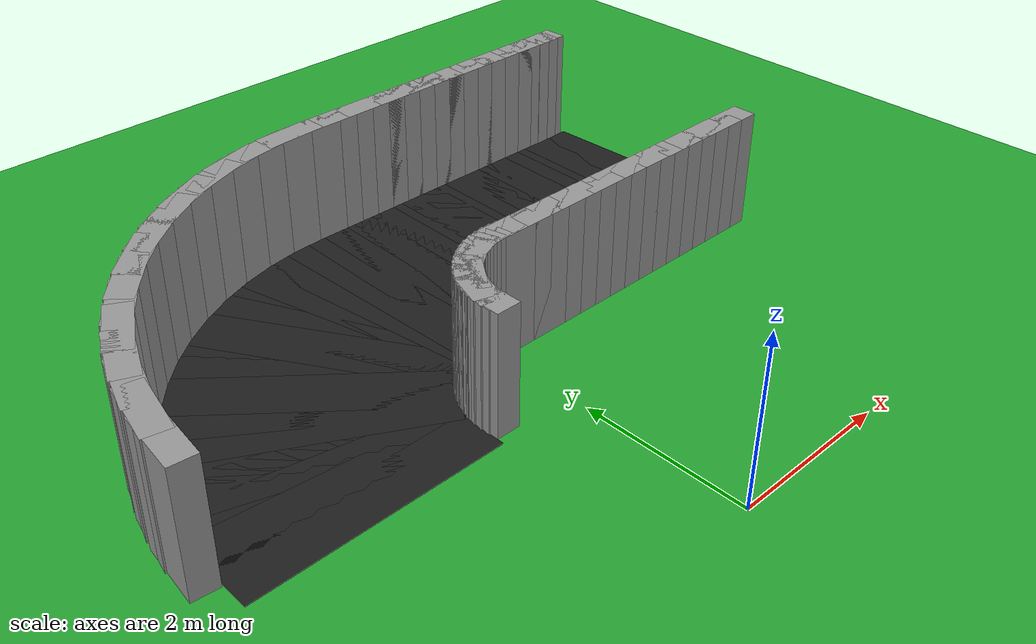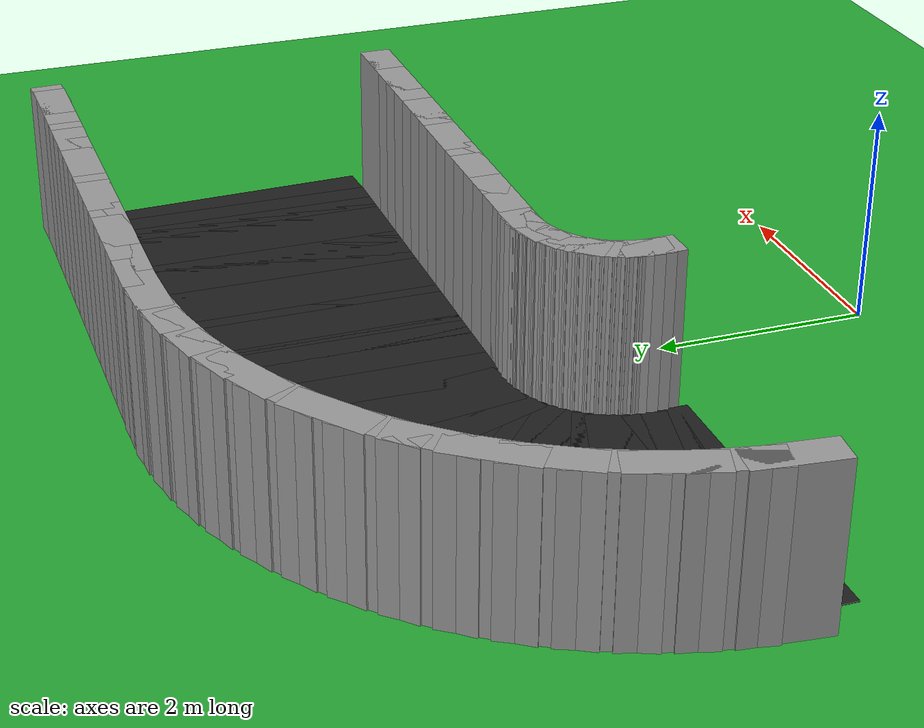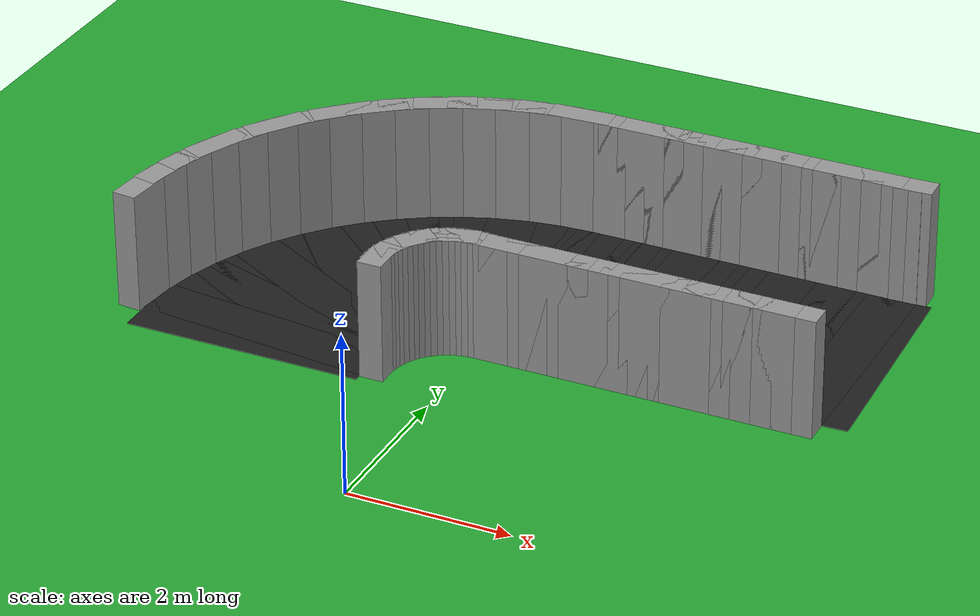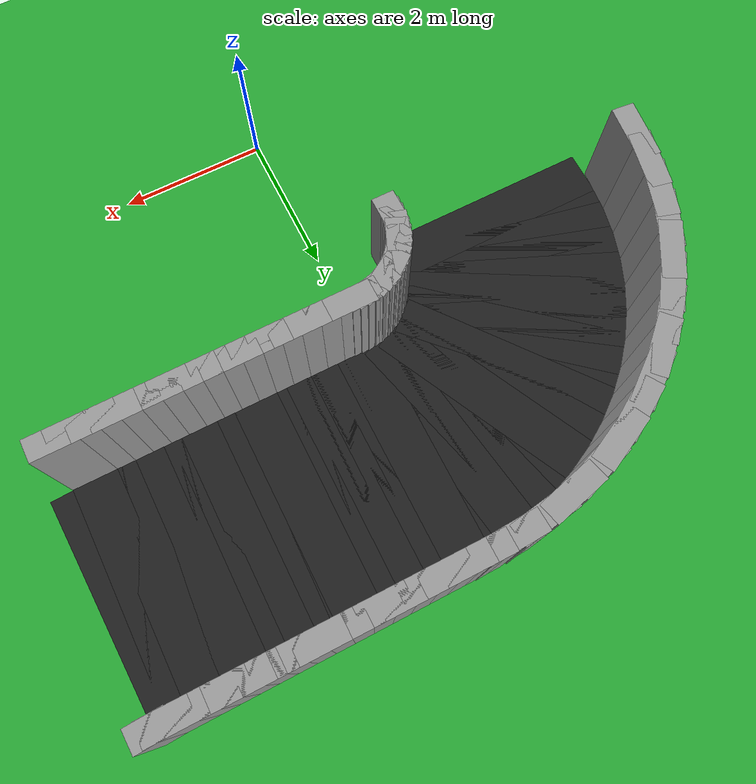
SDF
<sdf version="1.6">
 <world name="loop_extreme">
  <include><uri>model://sun</uri></include>
  <model name="ground_plane">
   <static>true</static>
   <link name="link">
    <collision name="collision">
     <surface><friction><ode><mu>100</mu><mu2>50</mu2></ode></friction></surface>
     <geometry><plane><normal>0 0 1</normal><size>120 120</size></plane></geometry>
    </collision>
    <visual name="visual">
     <geometry><plane><normal>0 0 1</normal><size>120 120</size></plane></geometry>
     <material>
      <script><uri>file://media/materials/scripts/gazebo.material</uri><name>Gazebo/Green</name></script>
     </material>
    </visual>
   </link>
  </model>
  <model name="asphalt_242">
   <static>true</static>
   <pose>4.124 5.007 0.005 0 0 -3.10026</pose>
   <link name="link">
    <visual name="visual">
     <geometry><box><size>0.608 3.000 0.010</size></box></geometry>
     <material>
      <script><uri>file://media/materials/scripts/gazebo.material</uri><name>Gazebo/Black</name></script>
     </material>
    </visual>
   </link>
  </model>
  <model name="curbR_242">
   <static>true</static>
   <pose>4.056 6.654 0.750 0 0 -3.10026</pose>
   <link name="link">
    <collision name="collision"><geometry><box><size>0.472 0.300 1.500</size></box></geometry></collision>
    <visual name="visual">
     <geometry><box><size>0.472 0.300 1.500</size></box></geometry>
     <material>
      <script><uri>file://media/materials/scripts/gazebo.material</uri><name>Gazebo/Grey</name></script>
     </material>
    </visual>
   </link>
  </model>
  <model name="asphalt_243">
   <static>true</static>
   <pose>3.875 5.002 0.005 0 0 3.14159</pose>
   <link name="link">
    <visual name="visual">
     <geometry><box><size>0.610 3.000 0.010</size></box></geometry>
     <material>
      <script><uri>file://media/materials/scripts/gazebo.material</uri><name>Gazebo/Black</name></script>
     </material>
    </visual>
   </link>
  </model>
  <model name="curbL_243">
   <static>true</static>
   <pose>3.875 3.352 0.750 0 0 3.14159</pose>
   <link name="link">
    <collision name="collision"><geometry><box><size>0.610 0.300 1.500</size></box></geometry></collision>
    <visual name="visual">
     <geometry><box><size>0.610 0.300 1.500</size></box></geometry>
     <material>
      <script><uri>file://media/materials/scripts/gazebo.material</uri><name>Gazebo/Grey</name></script>
     </material>
    </visual>
   </link>
  </model>
  <model name="curbR_243">
   <static>true</static>
   <pose>3.875 6.652 0.750 0 0 3.14159</pose>
   <link name="link">
    <collision name="collision"><geometry><box><size>0.610 0.300 1.500</size></box></geometry></collision>
    <visual name="visual">
     <geometry><box><size>0.610 0.300 1.500</size></box></geometry>
     <material>
      <script><uri>file://media/materials/scripts/gazebo.material</uri><name>Gazebo/Grey</name></script>
     </material>
    </visual>
   </link>
  </model>
  <model name="asphalt_244">
   <static>true</static>
   <pose>3.625 5.002 0.005 0 0 3.14159</pose>
   <link name="link">
    <visual name="visual">
     <geometry><box><size>0.610 3.000 0.010</size></box></geometry>
     <material>
      <script><uri>file://media/materials/scripts/gazebo.material</uri><name>Gazebo/Black</name></script>
     </material>
    </visual>
   </link>
  </model>
  <model name="curbL_244">
   <static>true</static>
   <pose>3.625 3.352 0.750 0 0 3.14159</pose>
   <link name="link">
    <collision name="collision"><geometry><box><size>0.610 0.300 1.500</size></box></geometry></collision>
    <visual name="visual">
     <geometry><box><size>0.610 0.300 1.500</size></box></geometry>
     <material>
      <script><uri>file://media/materials/scripts/gazebo.material</uri><name>Gazebo/Grey</name></script>
     </material>
    </visual>
   </link>
  </model>
  <model name="curbR_244">
   <static>true</static>
   <pose>3.625 6.652 0.750 0 0 3.14159</pose>
   <link name="link">
    <collision name="collision"><geometry><box><size>0.610 0.300 1.500</size></box></geometry></collision>
    <visual name="visual">
     <geometry><box><size>0.610 0.300 1.500</size></box></geometry>
     <material>
      <script><uri>file://media/materials/scripts/gazebo.material</uri><name>Gazebo/Grey</name></script>
     </material>
    </visual>
   </link>
  </model>
  <model name="asphalt_245">
   <static>true</static>
   <pose>3.375 5.002 0.005 0 0 3.14159</pose>
   <link name="link">
    <visual name="visual">
     <geometry><box><size>0.610 3.000 0.010</size></box></geometry>
     <material>
      <script><uri>file://media/materials/scripts/gazebo.material</uri><name>Gazebo/Black</name></script>
     </material>
    </visual>
   </link>
  </model>
  <model name="curbL_245">
   <static>true</static>
   <pose>3.375 3.352 0.750 0 0 3.14159</pose>
   <link name="link">
    <collision name="collision"><geometry><box><size>0.610 0.300 1.500</size></box></geometry></collision>
    <visual name="visual">
     <geometry><box><size>0.610 0.300 1.500</size></box></geometry>
     <material>
      <script><uri>file://media/materials/scripts/gazebo.material</uri><name>Gazebo/Grey</name></script>
     </material>
    </visual>
   </link>
  </model>
  <model name="curbR_245">
   <static>true</static>
   <pose>3.375 6.652 0.750 0 0 3.14159</pose>
   <link name="link">
    <collision name="collision"><geometry><box><size>0.610 0.300 1.500</size></box></geometry></collision>
    <visual name="visual">
     <geometry><box><size>0.610 0.300 1.500</size></box></geometry>
     <material>
      <script><uri>file://media/materials/scripts/gazebo.material</uri><name>Gazebo/Grey</name></script>
     </material>
    </visual>
   </link>
  </model>
  <model name="asphalt_246">
   <static>true</static>
   <pose>3.125 5.002 0.005 0 0 3.14159</pose>
   <link name="link">
    <visual name="visual">
     <geometry><box><size>0.610 3.000 0.010</size></box></geometry>
     <material>
      <script><uri>file://media/materials/scripts/gazebo.material</uri><name>Gazebo/Black</name></script>
     </material>
    </visual>
   </link>
  </model>
  <model name="curbL_246">
   <static>true</static>
   <pose>3.125 3.352 0.750 0 0 3.14159</pose>
   <link name="link">
    <collision name="collision"><geometry><box><size>0.610 0.300 1.500</size></box></geometry></collision>
    <visual name="visual">
     <geometry><box><size>0.610 0.300 1.500</size></box></geometry>
     <material>
      <script><uri>file://media/materials/scripts/gazebo.material</uri><name>Gazebo/Grey</name></script>
     </material>
    </visual>
   </link>
  </model>
  <model name="curbR_246">
   <static>true</static>
   <pose>3.125 6.652 0.750 0 0 3.14159</pose>
   <link name="link">
    <collision name="collision"><geometry><box><size>0.610 0.300 1.500</size></box></geometry></collision>
    <visual name="visual">
     <geometry><box><size>0.610 0.300 1.500</size></box></geometry>
     <material>
      <script><uri>file://media/materials/scripts/gazebo.material</uri><name>Gazebo/Grey</name></script>
     </material>
    </visual>
   </link>
  </model>
  <model name="asphalt_247">
   <static>true</static>
   <pose>2.875 5.002 0.005 0 0 3.14159</pose>
   <link name="link">
    <visual name="visual">
     <geometry><box><size>0.610 3.000 0.010</size></box></geometry>
     <material>
      <script><uri>file://media/materials/scripts/gazebo.material</uri><name>Gazebo/Black</name></script>
     </material>
    </visual>
   </link>
  </model>
  <model name="curbL_247">
   <static>true</static>
   <pose>2.875 3.352 0.750 0 0 3.14159</pose>
   <link name="link">
    <collision name="collision"><geometry><box><size>0.610 0.300 1.500</size></box></geometry></collision>
    <visual name="visual">
     <geometry><box><size>0.610 0.300 1.500</size></box></geometry>
     <material>
      <script><uri>file://media/materials/scripts/gazebo.material</uri><name>Gazebo/Grey</name></script>
     </material>
    </visual>
   </link>
  </model>
  <model name="curbR_247">
   <static>true</static>
   <pose>2.875 6.652 0.750 0 0 3.14159</pose>
   <link name="link">
    <collision name="collision"><geometry><box><size>0.610 0.300 1.500</size></box></geometry></collision>
    <visual name="visual">
     <geometry><box><size>0.610 0.300 1.500</size></box></geometry>
     <material>
      <script><uri>file://media/materials/scripts/gazebo.material</uri><name>Gazebo/Grey</name></script>
     </material>
    </visual>
   </link>
  </model>
  <model name="asphalt_248">
   <static>true</static>
   <pose>2.625 5.002 0.005 0 0 3.14159</pose>
   <link name="link">
    <visual name="visual">
     <geometry><box><size>0.610 3.000 0.010</size></box></geometry>
     <material>
      <script><uri>file://media/materials/scripts/gazebo.material</uri><name>Gazebo/Black</name></script>
     </material>
    </visual>
   </link>
  </model>
  <model name="curbL_248">
   <static>true</static>
   <pose>2.625 3.352 0.750 0 0 3.14159</pose>
   <link name="link">
    <collision name="collision"><geometry><box><size>0.610 0.300 1.500</size></box></geometry></collision>
    <visual name="visual">
     <geometry><box><size>0.610 0.300 1.500</size></box></geometry>
     <material>
      <script><uri>file://media/materials/scripts/gazebo.material</uri><name>Gazebo/Grey</name></script>
     </material>
    </visual>
   </link>
  </model>
  <model name="curbR_248">
   <static>true</static>
   <pose>2.625 6.652 0.750 0 0 3.14159</pose>
   <link name="link">
    <collision name="collision"><geometry><box><size>0.610 0.300 1.500</size></box></geometry></collision>
    <visual name="visual">
     <geometry><box><size>0.610 0.300 1.500</size></box></geometry>
     <material>
      <script><uri>file://media/materials/scripts/gazebo.material</uri><name>Gazebo/Grey</name></script>
     </material>
    </visual>
   </link>
  </model>
  <model name="asphalt_249">
   <static>true</static>
   <pose>2.375 5.002 0.005 0 0 3.14159</pose>
   <link name="link">
    <visual name="visual">
     <geometry><box><size>0.610 3.000 0.010</size></box></geometry>
     <material>
      <script><uri>file://media/materials/scripts/gazebo.material</uri><name>Gazebo/Black</name></script>
     </material>
    </visual>
   </link>
  </model>
  <model name="curbL_249">
   <static>true</static>
   <pose>2.375 3.352 0.750 0 0 3.14159</pose>
   <link name="link">
    <collision name="collision"><geometry><box><size>0.610 0.300 1.500</size></box></geometry></collision>
    <visual name="visual">
     <geometry><box><size>0.610 0.300 1.500</size></box></geometry>
     <material>
      <script><uri>file://media/materials/scripts/gazebo.material</uri><name>Gazebo/Grey</name></script>
     </material>
    </visual>
   </link>
  </model>
  <model name="curbR_249">
   <static>true</static>
   <pose>2.375 6.652 0.750 0 0 3.14159</pose>
   <link name="link">
    <collision name="collision"><geometry><box><size>0.610 0.300 1.500</size></box></geometry></collision>
    <visual name="visual">
     <geometry><box><size>0.610 0.300 1.500</size></box></geometry>
     <material>
      <script><uri>file://media/materials/scripts/gazebo.material</uri><name>Gazebo/Grey</name></script>
     </material>
    </visual>
   </link>
  </model>
  <model name="asphalt_250">
   <static>true</static>
   <pose>2.125 5.002 0.005 0 0 3.14159</pose>
   <link name="link">
    <visual name="visual">
     <geometry><box><size>0.610 3.000 0.010</size></box></geometry>
     <material>
      <script><uri>file://media/materials/scripts/gazebo.material</uri><name>Gazebo/Black</name></script>
     </material>
    </visual>
   </link>
  </model>
  <model name="curbL_250">
   <static>true</static>
   <pose>2.125 3.352 0.750 0 0 3.14159</pose>
   <link name="link">
    <collision name="collision"><geometry><box><size>0.610 0.300 1.500</size></box></geometry></collision>
    <visual name="visual">
     <geometry><box><size>0.610 0.300 1.500</size></box></geometry>
     <material>
      <script><uri>file://media/materials/scripts/gazebo.material</uri><name>Gazebo/Grey</name></script>
     </material>
    </visual>
   </link>
  </model>
  <model name="curbR_250">
   <static>true</static>
   <pose>2.125 6.652 0.750 0 0 3.14159</pose>
   <link name="link">
    <collision name="collision"><geometry><box><size>0.610 0.300 1.500</size></box></geometry></collision>
    <visual name="visual">
     <geometry><box><size>0.610 0.300 1.500</size></box></geometry>
     <material>
      <script><uri>file://media/materials/scripts/gazebo.material</uri><name>Gazebo/Grey</name></script>
     </material>
    </visual>
   </link>
  </model>
  <model name="asphalt_251">
   <static>true</static>
   <pose>1.875 5.002 0.005 0 0 3.14159</pose>
   <link name="link">
    <visual name="visual">
     <geometry><box><size>0.610 3.000 0.010</size></box></geometry>
     <material>
      <script><uri>file://media/materials/scripts/gazebo.material</uri><name>Gazebo/Black</name></script>
     </material>
    </visual>
   </link>
  </model>
  <model name="curbL_251">
   <static>true</static>
   <pose>1.875 3.352 0.750 0 0 3.14159</pose>
   <link name="link">
    <collision name="collision"><geometry><box><size>0.610 0.300 1.500</size></box></geometry></collision>
    <visual name="visual">
     <geometry><box><size>0.610 0.300 1.500</size></box></geometry>
     <material>
      <script><uri>file://media/materials/scripts/gazebo.material</uri><name>Gazebo/Grey</name></script>
     </material>
    </visual>
   </link>
  </model>
  <model name="curbR_251">
   <static>true</static>
   <pose>1.875 6.652 0.750 0 0 3.14159</pose>
   <link name="link">
    <collision name="collision"><geometry><box><size>0.610 0.300 1.500</size></box></geometry></collision>
    <visual name="visual">
     <geometry><box><size>0.610 0.300 1.500</size></box></geometry>
     <material>
      <script><uri>file://media/materials/scripts/gazebo.material</uri><name>Gazebo/Grey</name></script>
     </material>
    </visual>
   </link>
  </model>
  <model name="asphalt_252">
   <static>true</static>
   <pose>1.625 5.002 0.005 0 0 3.14159</pose>
   <link name="link">
    <visual name="visual">
     <geometry><box><size>0.610 3.000 0.010</size></box></geometry>
     <material>
      <script><uri>file://media/materials/scripts/gazebo.material</uri><name>Gazebo/Black</name></script>
     </material>
    </visual>
   </link>
  </model>
  <model name="curbL_252">
   <static>true</static>
   <pose>1.625 3.352 0.750 0 0 3.14159</pose>
   <link name="link">
    <collision name="collision"><geometry><box><size>0.610 0.300 1.500</size></box></geometry></collision>
    <visual name="visual">
     <geometry><box><size>0.610 0.300 1.500</size></box></geometry>
     <material>
      <script><uri>file://media/materials/scripts/gazebo.material</uri><name>Gazebo/Grey</name></script>
     </material>
    </visual>
   </link>
  </model>
  <model name="curbR_252">
   <static>true</static>
   <pose>1.625 6.652 0.750 0 0 3.14159</pose>
   <link name="link">
    <collision name="collision"><geometry><box><size>0.610 0.300 1.500</size></box></geometry></collision>
    <visual name="visual">
     <geometry><box><size>0.610 0.300 1.500</size></box></geometry>
     <material>
      <script><uri>file://media/materials/scripts/gazebo.material</uri><name>Gazebo/Grey</name></script>
     </material>
    </visual>
   </link>
  </model>
  <model name="asphalt_253">
   <static>true</static>
   <pose>1.375 5.002 0.005 0 0 3.14159</pose>
   <link name="link">
    <visual name="visual">
     <geometry><box><size>0.610 3.000 0.010</size></box></geometry>
     <material>
      <script><uri>file://media/materials/scripts/gazebo.material</uri><name>Gazebo/Black</name></script>
     </material>
    </visual>
   </link>
  </model>
  <model name="curbL_253">
   <static>true</static>
   <pose>1.375 3.352 0.750 0 0 3.14159</pose>
   <link name="link">
    <collision name="collision"><geometry><box><size>0.610 0.300 1.500</size></box></geometry></collision>
    <visual name="visual">
     <geometry><box><size>0.610 0.300 1.500</size></box></geometry>
     <material>
      <script><uri>file://media/materials/scripts/gazebo.material</uri><name>Gazebo/Grey</name></script>
     </material>
    </visual>
   </link>
  </model>
  <model name="curbR_253">
   <static>true</static>
   <pose>1.375 6.652 0.750 0 0 3.14159</pose>
   <link name="link">
    <collision name="collision"><geometry><box><size>0.610 0.300 1.500</size></box></geometry></collision>
    <visual name="visual">
     <geometry><box><size>0.610 0.300 1.500</size></box></geometry>
     <material>
      <script><uri>file://media/materials/scripts/gazebo.material</uri><name>Gazebo/Grey</name></script>
     </material>
    </visual>
   </link>
  </model>
  <model name="asphalt_254">
   <static>true</static>
   <pose>1.125 5.002 0.005 0 0 3.14159</pose>
   <link name="link">
    <visual name="visual">
     <geometry><box><size>0.610 3.000 0.010</size></box></geometry>
     <material>
      <script><uri>file://media/materials/scripts/gazebo.material</uri><name>Gazebo/Black</name></script>
     </material>
    </visual>
   </link>
  </model>
  <model name="curbL_254">
   <static>true</static>
   <pose>1.125 3.352 0.750 0 0 3.14159</pose>
   <link name="link">
    <collision name="collision"><geometry><box><size>0.610 0.300 1.500</size></box></geometry></collision>
    <visual name="visual">
     <geometry><box><size>0.610 0.300 1.500</size></box></geometry>
     <material>
      <script><uri>file://media/materials/scripts/gazebo.material</uri><name>Gazebo/Grey</name></script>
     </material>
    </visual>
   </link>
  </model>
  <model name="curbR_254">
   <static>true</static>
   <pose>1.125 6.652 0.750 0 0 3.14159</pose>
   <link name="link">
    <collision name="collision"><geometry><box><size>0.610 0.300 1.500</size></box></geometry></collision>
    <visual name="visual">
     <geometry><box><size>0.610 0.300 1.500</size></box></geometry>
     <material>
      <script><uri>file://media/materials/scripts/gazebo.material</uri><name>Gazebo/Grey</name></script>
     </material>
    </visual>
   </link>
  </model>
  <model name="asphalt_255">
   <static>true</static>
   <pose>0.875 5.002 0.005 0 0 3.14159</pose>
   <link name="link">
    <visual name="visual">
     <geometry><box><size>0.610 3.000 0.010</size></box></geometry>
     <material>
      <script><uri>file://media/materials/scripts/gazebo.material</uri><name>Gazebo/Black</name></script>
     </material>
    </visual>
   </link>
  </model>
  <model name="curbL_255">
   <static>true</static>
   <pose>0.875 3.352 0.750 0 0 3.14159</pose>
   <link name="link">
    <collision name="collision"><geometry><box><size>0.610 0.300 1.500</size></box></geometry></collision>
    <visual name="visual">
     <geometry><box><size>0.610 0.300 1.500</size></box></geometry>
     <material>
      <script><uri>file://media/materials/scripts/gazebo.material</uri><name>Gazebo/Grey</name></script>
     </material>
    </visual>
   </link>
  </model>
  <model name="curbR_255">
   <static>true</static>
   <pose>0.875 6.652 0.750 0 0 3.14159</pose>
   <link name="link">
    <collision name="collision"><geometry><box><size>0.610 0.300 1.500</size></box></geometry></collision>
    <visual name="visual">
     <geometry><box><size>0.610 0.300 1.500</size></box></geometry>
     <material>
      <script><uri>file://media/materials/scripts/gazebo.material</uri><name>Gazebo/Grey</name></script>
     </material>
    </visual>
   </link>
  </model>
  <model name="asphalt_256">
   <static>true</static>
   <pose>0.625 5.002 0.005 0 0 3.14159</pose>
   <link name="link">
    <visual name="visual">
     <geometry><box><size>0.610 3.000 0.010</size></box></geometry>
     <material>
      <script><uri>file://media/materials/scripts/gazebo.material</uri><name>Gazebo/Black</name></script>
     </material>
    </visual>
   </link>
  </model>
  <model name="curbL_256">
   <static>true</static>
   <pose>0.625 3.352 0.750 0 0 3.14159</pose>
   <link name="link">
    <collision name="collision"><geometry><box><size>0.610 0.300 1.500</size></box></geometry></collision>
    <visual name="visual">
     <geometry><box><size>0.610 0.300 1.500</size></box></geometry>
     <material>
      <script><uri>file://media/materials/scripts/gazebo.material</uri><name>Gazebo/Grey</name></script>
     </material>
    </visual>
   </link>
  </model>
  <model name="curbR_256">
   <static>true</static>
   <pose>0.625 6.652 0.750 0 0 3.14159</pose>
   <link name="link">
    <collision name="collision"><geometry><box><size>0.610 0.300 1.500</size></box></geometry></collision>
    <visual name="visual">
     <geometry><box><size>0.610 0.300 1.500</size></box></geometry>
     <material>
      <script><uri>file://media/materials/scripts/gazebo.material</uri><name>Gazebo/Grey</name></script>
     </material>
    </visual>
   </link>
  </model>
  <model name="asphalt_257">
   <static>true</static>
   <pose>0.375 5.002 0.005 0 0 3.14159</pose>
   <link name="link">
    <visual name="visual">
     <geometry><box><size>0.610 3.000 0.010</size></box></geometry>
     <material>
      <script><uri>file://media/materials/scripts/gazebo.material</uri><name>Gazebo/Black</name></script>
     </material>
    </visual>
   </link>
  </model>
  <model name="curbL_257">
   <static>true</static>
   <pose>0.375 3.352 0.750 0 0 3.14159</pose>
   <link name="link">
    <collision name="collision"><geometry><box><size>0.610 0.300 1.500</size></box></geometry></collision>
    <visual name="visual">
     <geometry><box><size>0.610 0.300 1.500</size></box></geometry>
     <material>
      <script><uri>file://media/materials/scripts/gazebo.material</uri><name>Gazebo/Grey</name></script>
     </material>
    </visual>
   </link>
  </model>
  <model name="curbR_257">
   <static>true</static>
   <pose>0.375 6.652 0.750 0 0 3.14159</pose>
   <link name="link">
    <collision name="collision"><geometry><box><size>0.610 0.300 1.500</size></box></geometry></collision>
    <visual name="visual">
     <geometry><box><size>0.610 0.300 1.500</size></box></geometry>
     <material>
      <script><uri>file://media/materials/scripts/gazebo.material</uri><name>Gazebo/Grey</name></script>
     </material>
    </visual>
   </link>
  </model>
  <model name="asphalt_258">
   <static>true</static>
   <pose>0.125 5.002 0.005 0 0 3.14159</pose>
   <link name="link">
    <visual name="visual">
     <geometry><box><size>0.610 3.000 0.010</size></box></geometry>
     <material>
      <script><uri>file://media/materials/scripts/gazebo.material</uri><name>Gazebo/Black</name></script>
     </material>
    </visual>
   </link>
  </model>
  <model name="curbL_258">
   <static>true</static>
   <pose>0.125 3.352 0.750 0 0 3.14159</pose>
   <link name="link">
    <collision name="collision"><geometry><box><size>0.610 0.300 1.500</size></box></geometry></collision>
    <visual name="visual">
     <geometry><box><size>0.610 0.300 1.500</size></box></geometry>
     <material>
      <script><uri>file://media/materials/scripts/gazebo.material</uri><name>Gazebo/Grey</name></script>
     </material>
    </visual>
   </link>
  </model>
  <model name="curbR_258">
   <static>true</static>
   <pose>0.125 6.652 0.750 0 0 3.14159</pose>
   <link name="link">
    <collision name="collision"><geometry><box><size>0.610 0.300 1.500</size></box></geometry></collision>
    <visual name="visual">
     <geometry><box><size>0.610 0.300 1.500</size></box></geometry>
     <material>
      <script><uri>file://media/materials/scripts/gazebo.material</uri><name>Gazebo/Grey</name></script>
     </material>
    </visual>
   </link>
  </model>
  <model name="asphalt_259">
   <static>true</static>
   <pose>-0.127 4.996 0.005 0 0 -3.09092</pose>
   <link name="link">
    <visual name="visual">
     <geometry><box><size>0.613 3.000 0.010</size></box></geometry>
     <material>
      <script><uri>file://media/materials/scripts/gazebo.material</uri><name>Gazebo/Black</name></script>
     </material>
    </visual>
   </link>
  </model>
  <model name="curbL_259">
   <static>true</static>
   <pose>-0.043 3.350 0.750 0 0 -3.09092</pose>
   <link name="link">
    <collision name="collision"><geometry><box><size>0.446 0.300 1.500</size></box></geometry></collision>
    <visual name="visual">
     <geometry><box><size>0.446 0.300 1.500</size></box></geometry>
     <material>
      <script><uri>file://media/materials/scripts/gazebo.material</uri><name>Gazebo/Grey</name></script>
     </material>
    </visual>
   </link>
  </model>
  <model name="curbR_259">
   <static>true</static>
   <pose>-0.210 6.641 0.750 0 0 -3.09092</pose>
   <link name="link">
    <collision name="collision"><geometry><box><size>0.780 0.300 1.500</size></box></geometry></collision>
    <visual name="visual">
     <geometry><box><size>0.780 0.300 1.500</size></box></geometry>
     <material>
      <script><uri>file://media/materials/scripts/gazebo.material</uri><name>Gazebo/Grey</name></script>
     </material>
    </visual>
   </link>
  </model>
  <model name="asphalt_260">
   <static>true</static>
   <pose>-0.378 4.970 0.005 0 0 -2.98958</pose>
   <link name="link">
    <visual name="visual">
     <geometry><box><size>0.613 3.000 0.010</size></box></geometry>
     <material>
      <script><uri>file://media/materials/scripts/gazebo.material</uri><name>Gazebo/Black</name></script>
     </material>
    </visual>
   </link>
  </model>
  <model name="curbL_260">
   <static>true</static>
   <pose>-0.129 3.341 0.750 0 0 -2.98958</pose>
   <link name="link">
    <collision name="collision"><geometry><box><size>0.446 0.300 1.500</size></box></geometry></collision>
    <visual name="visual">
     <geometry><box><size>0.446 0.300 1.500</size></box></geometry>
     <material>
      <script><uri>file://media/materials/scripts/gazebo.material</uri><name>Gazebo/Grey</name></script>
     </material>
    </visual>
   </link>
  </model>
  <model name="curbR_260">
   <static>true</static>
   <pose>-0.628 6.599 0.750 0 0 -2.98958</pose>
   <link name="link">
    <collision name="collision"><geometry><box><size>0.780 0.300 1.500</size></box></geometry></collision>
    <visual name="visual">
     <geometry><box><size>0.780 0.300 1.500</size></box></geometry>
     <material>
      <script><uri>file://media/materials/scripts/gazebo.material</uri><name>Gazebo/Grey</name></script>
     </material>
    </visual>
   </link>
  </model>
  <model name="asphalt_261">
   <static>true</static>
   <pose>-0.626 4.919 0.005 0 0 -2.88824</pose>
   <link name="link">
    <visual name="visual">
     <geometry><box><size>0.613 3.000 0.010</size></box></geometry>
     <material>
      <script><uri>file://media/materials/scripts/gazebo.material</uri><name>Gazebo/Black</name></script>
     </material>
    </visual>
   </link>
  </model>
  <model name="curbL_261">
   <static>true</static>
   <pose>-0.213 3.324 0.750 0 0 -2.88824</pose>
   <link name="link">
    <collision name="collision"><geometry><box><size>0.446 0.300 1.500</size></box></geometry></collision>
    <visual name="visual">
     <geometry><box><size>0.446 0.300 1.500</size></box></geometry>
     <material>
      <script><uri>file://media/materials/scripts/gazebo.material</uri><name>Gazebo/Grey</name></script>
     </material>
    </visual>
   </link>
  </model>
  <model name="curbR_261">
   <static>true</static>
   <pose>-1.039 6.514 0.750 0 0 -2.88824</pose>
   <link name="link">
    <collision name="collision"><geometry><box><size>0.780 0.300 1.500</size></box></geometry></collision>
    <visual name="visual">
     <geometry><box><size>0.780 0.300 1.500</size></box></geometry>
     <material>
      <script><uri>file://media/materials/scripts/gazebo.material</uri><name>Gazebo/Grey</name></script>
     </material>
    </visual>
   </link>
  </model>
  <model name="asphalt_262">
   <static>true</static>
   <pose>-0.868 4.843 0.005 0 0 -2.78690</pose>
   <link name="link">
    <visual name="visual">
     <geometry><box><size>0.613 3.000 0.010</size></box></geometry>
     <material>
      <script><uri>file://media/materials/scripts/gazebo.material</uri><name>Gazebo/Black</name></script>
     </material>
    </visual>
   </link>
  </model>
  <model name="curbL_262">
   <static>true</static>
   <pose>-0.295 3.298 0.750 0 0 -2.78690</pose>
   <link name="link">
    <collision name="collision"><geometry><box><size>0.446 0.300 1.500</size></box></geometry></collision>
    <visual name="visual">
     <geometry><box><size>0.446 0.300 1.500</size></box></geometry>
     <material>
      <script><uri>file://media/materials/scripts/gazebo.material</uri><name>Gazebo/Grey</name></script>
     </material>
    </visual>
   </link>
  </model>
  <model name="curbR_262">
   <static>true</static>
   <pose>-1.440 6.389 0.750 0 0 -2.78690</pose>
   <link name="link">
    <collision name="collision"><geometry><box><size>0.780 0.300 1.500</size></box></geometry></collision>
    <visual name="visual">
     <geometry><box><size>0.780 0.300 1.500</size></box></geometry>
     <material>
      <script><uri>file://media/materials/scripts/gazebo.material</uri><name>Gazebo/Grey</name></script>
     </material>
    </visual>
   </link>
  </model>
  <model name="asphalt_263">
   <static>true</static>
   <pose>-1.100 4.744 0.005 0 0 -2.68556</pose>
   <link name="link">
    <visual name="visual">
     <geometry><box><size>0.613 3.000 0.010</size></box></geometry>
     <material>
      <script><uri>file://media/materials/scripts/gazebo.material</uri><name>Gazebo/Black</name></script>
     </material>
    </visual>
   </link>
  </model>
  <model name="curbL_263">
   <static>true</static>
   <pose>-0.374 3.264 0.750 0 0 -2.68556</pose>
   <link name="link">
    <collision name="collision"><geometry><box><size>0.446 0.300 1.500</size></box></geometry></collision>
    <visual name="visual">
     <geometry><box><size>0.446 0.300 1.500</size></box></geometry>
     <material>
      <script><uri>file://media/materials/scripts/gazebo.material</uri><name>Gazebo/Grey</name></script>
     </material>
    </visual>
   </link>
  </model>
  <model name="curbR_263">
   <static>true</static>
   <pose>-1.826 6.223 0.750 0 0 -2.68556</pose>
   <link name="link">
    <collision name="collision"><geometry><box><size>0.780 0.300 1.500</size></box></geometry></collision>
    <visual name="visual">
     <geometry><box><size>0.780 0.300 1.500</size></box></geometry>
     <material>
      <script><uri>file://media/materials/scripts/gazebo.material</uri><name>Gazebo/Grey</name></script>
     </material>
    </visual>
   </link>
  </model>
  <model name="asphalt_264">
   <static>true</static>
   <pose>-1.321 4.621 0.005 0 0 -2.58421</pose>
   <link name="link">
    <visual name="visual">
     <geometry><box><size>0.613 3.000 0.010</size></box></geometry>
     <material>
      <script><uri>file://media/materials/scripts/gazebo.material</uri><name>Gazebo/Black</name></script>
     </material>
    </visual>
   </link>
  </model>
  <model name="curbL_264">
   <static>true</static>
   <pose>-0.450 3.222 0.750 0 0 -2.58421</pose>
   <link name="link">
    <collision name="collision"><geometry><box><size>0.446 0.300 1.500</size></box></geometry></collision>
    <visual name="visual">
     <geometry><box><size>0.446 0.300 1.500</size></box></geometry>
     <material>
      <script><uri>file://media/materials/scripts/gazebo.material</uri><name>Gazebo/Grey</name></script>
     </material>
    </visual>
   </link>
  </model>
  <model name="curbR_264">
   <static>true</static>
   <pose>-2.193 6.019 0.750 0 0 -2.58421</pose>
   <link name="link">
    <collision name="collision"><geometry><box><size>0.780 0.300 1.500</size></box></geometry></collision>
    <visual name="visual">
     <geometry><box><size>0.780 0.300 1.500</size></box></geometry>
     <material>
      <script><uri>file://media/materials/scripts/gazebo.material</uri><name>Gazebo/Grey</name></script>
     </material>
    </visual>
   </link>
  </model>
  <model name="asphalt_265">
   <static>true</static>
   <pose>-1.529 4.476 0.005 0 0 -2.48287</pose>
   <link name="link">
    <visual name="visual">
     <geometry><box><size>0.613 3.000 0.010</size></box></geometry>
     <material>
      <script><uri>file://media/materials/scripts/gazebo.material</uri><name>Gazebo/Black</name></script>
     </material>
    </visual>
   </link>
  </model>
  <model name="curbL_265">
   <static>true</static>
   <pose>-0.520 3.173 0.750 0 0 -2.48287</pose>
   <link name="link">
    <collision name="collision"><geometry><box><size>0.446 0.300 1.500</size></box></geometry></collision>
    <visual name="visual">
     <geometry><box><size>0.446 0.300 1.500</size></box></geometry>
     <material>
      <script><uri>file://media/materials/scripts/gazebo.material</uri><name>Gazebo/Grey</name></script>
     </material>
    </visual>
   </link>
  </model>
  <model name="curbR_265">
   <static>true</static>
   <pose>-2.538 5.779 0.750 0 0 -2.48287</pose>
   <link name="link">
    <collision name="collision"><geometry><box><size>0.780 0.300 1.500</size></box></geometry></collision>
    <visual name="visual">
     <geometry><box><size>0.780 0.300 1.500</size></box></geometry>
     <material>
      <script><uri>file://media/materials/scripts/gazebo.material</uri><name>Gazebo/Grey</name></script>
     </material>
    </visual>
   </link>
  </model>
  <model name="asphalt_266">
   <static>true</static>
   <pose>-1.721 4.312 0.005 0 0 -2.38153</pose>
   <link name="link">
    <visual name="visual">
     <geometry><box><size>0.613 3.000 0.010</size></box></geometry>
     <material>
      <script><uri>file://media/materials/scripts/gazebo.material</uri><name>Gazebo/Black</name></script>
     </material>
    </visual>
   </link>
  </model>
  <model name="curbL_266">
   <static>true</static>
   <pose>-0.586 3.117 0.750 0 0 -2.38153</pose>
   <link name="link">
    <collision name="collision"><geometry><box><size>0.446 0.300 1.500</size></box></geometry></collision>
    <visual name="visual">
     <geometry><box><size>0.446 0.300 1.500</size></box></geometry>
     <material>
      <script><uri>file://media/materials/scripts/gazebo.material</uri><name>Gazebo/Grey</name></script>
     </material>
    </visual>
   </link>
  </model>
  <model name="curbR_266">
   <static>true</static>
   <pose>-2.856 5.506 0.750 0 0 -2.38153</pose>
   <link name="link">
    <collision name="collision"><geometry><box><size>0.780 0.300 1.500</size></box></geometry></collision>
    <visual name="visual">
     <geometry><box><size>0.780 0.300 1.500</size></box></geometry>
     <material>
      <script><uri>file://media/materials/scripts/gazebo.material</uri><name>Gazebo/Grey</name></script>
     </material>
    </visual>
   </link>
  </model>
  <model name="asphalt_267">
   <static>true</static>
   <pose>-1.895 4.128 0.005 0 0 -2.28019</pose>
   <link name="link">
    <visual name="visual">
     <geometry><box><size>0.613 3.000 0.010</size></box></geometry>
     <material>
      <script><uri>file://media/materials/scripts/gazebo.material</uri><name>Gazebo/Black</name></script>
     </material>
    </visual>
   </link>
  </model>
  <model name="curbL_267">
   <static>true</static>
   <pose>-0.645 3.055 0.750 0 0 -2.28019</pose>
   <link name="link">
    <collision name="collision"><geometry><box><size>0.446 0.300 1.500</size></box></geometry></collision>
    <visual name="visual">
     <geometry><box><size>0.446 0.300 1.500</size></box></geometry>
     <material>
      <script><uri>file://media/materials/scripts/gazebo.material</uri><name>Gazebo/Grey</name></script>
     </material>
    </visual>
   </link>
  </model>
  <model name="curbR_267">
   <static>true</static>
   <pose>-3.146 5.201 0.750 0 0 -2.28019</pose>
   <link name="link">
    <collision name="collision"><geometry><box><size>0.780 0.300 1.500</size></box></geometry></collision>
    <visual name="visual">
     <geometry><box><size>0.780 0.300 1.500</size></box></geometry>
     <material>
      <script><uri>file://media/materials/scripts/gazebo.material</uri><name>Gazebo/Grey</name></script>
     </material>
    </visual>
   </link>
  </model>
  <model name="asphalt_268">
   <static>true</static>
   <pose>-2.050 3.928 0.005 0 0 -2.17885</pose>
   <link name="link">
    <visual name="visual">
     <geometry><box><size>0.613 3.000 0.010</size></box></geometry>
     <material>
      <script><uri>file://media/materials/scripts/gazebo.material</uri><name>Gazebo/Black</name></script>
     </material>
    </visual>
   </link>
  </model>
  <model name="curbL_268">
   <static>true</static>
   <pose>-0.698 2.987 0.750 0 0 -2.17885</pose>
   <link name="link">
    <collision name="collision"><geometry><box><size>0.446 0.300 1.500</size></box></geometry></collision>
    <visual name="visual">
     <geometry><box><size>0.446 0.300 1.500</size></box></geometry>
     <material>
      <script><uri>file://media/materials/scripts/gazebo.material</uri><name>Gazebo/Grey</name></script>
     </material>
    </visual>
   </link>
  </model>
  <model name="curbR_268">
   <static>true</static>
   <pose>-3.403 4.869 0.750 0 0 -2.17885</pose>
   <link name="link">
    <collision name="collision"><geometry><box><size>0.780 0.300 1.500</size></box></geometry></collision>
    <visual name="visual">
     <geometry><box><size>0.780 0.300 1.500</size></box></geometry>
     <material>
      <script><uri>file://media/materials/scripts/gazebo.material</uri><name>Gazebo/Grey</name></script>
     </material>
    </visual>
   </link>
  </model>
  <model name="asphalt_269">
   <static>true</static>
   <pose>-2.184 3.713 0.005 0 0 -2.07750</pose>
   <link name="link">
    <visual name="visual">
     <geometry><box><size>0.613 3.000 0.010</size></box></geometry>
     <material>
      <script><uri>file://media/materials/scripts/gazebo.material</uri><name>Gazebo/Black</name></script>
     </material>
    </visual>
   </link>
  </model>
  <model name="curbL_269">
   <static>true</static>
   <pose>-0.743 2.914 0.750 0 0 -2.07750</pose>
   <link name="link">
    <collision name="collision"><geometry><box><size>0.446 0.300 1.500</size></box></geometry></collision>
    <visual name="visual">
     <geometry><box><size>0.446 0.300 1.500</size></box></geometry>
     <material>
      <script><uri>file://media/materials/scripts/gazebo.material</uri><name>Gazebo/Grey</name></script>
     </material>
    </visual>
   </link>
  </model>
  <model name="curbR_269">
   <static>true</static>
   <pose>-3.625 4.513 0.750 0 0 -2.07750</pose>
   <link name="link">
    <collision name="collision"><geometry><box><size>0.780 0.300 1.500</size></box></geometry></collision>
    <visual name="visual">
     <geometry><box><size>0.780 0.300 1.500</size></box></geometry>
     <material>
      <script><uri>file://media/materials/scripts/gazebo.material</uri><name>Gazebo/Grey</name></script>
     </material>
    </visual>
   </link>
  </model>
  <model name="asphalt_270">
   <static>true</static>
   <pose>-2.295 3.486 0.005 0 0 -1.97616</pose>
   <link name="link">
    <visual name="visual">
     <geometry><box><size>0.613 3.000 0.010</size></box></geometry>
     <material>
      <script><uri>file://media/materials/scripts/gazebo.material</uri><name>Gazebo/Black</name></script>
     </material>
    </visual>
   </link>
  </model>
  <model name="curbL_270">
   <static>true</static>
   <pose>-0.781 2.836 0.750 0 0 -1.97616</pose>
   <link name="link">
    <collision name="collision"><geometry><box><size>0.446 0.300 1.500</size></box></geometry></collision>
    <visual name="visual">
     <geometry><box><size>0.446 0.300 1.500</size></box></geometry>
     <material>
      <script><uri>file://media/materials/scripts/gazebo.material</uri><name>Gazebo/Grey</name></script>
     </material>
    </visual>
   </link>
  </model>
  <model name="curbR_270">
   <static>true</static>
   <pose>-3.810 4.136 0.750 0 0 -1.97616</pose>
   <link name="link">
    <collision name="collision"><geometry><box><size>0.780 0.300 1.500</size></box></geometry></collision>
    <visual name="visual">
     <geometry><box><size>0.780 0.300 1.500</size></box></geometry>
     <material>
      <script><uri>file://media/materials/scripts/gazebo.material</uri><name>Gazebo/Grey</name></script>
     </material>
    </visual>
   </link>
  </model>
  <model name="asphalt_271">
   <static>true</static>
   <pose>-2.383 3.249 0.005 0 0 -1.87482</pose>
   <link name="link">
    <visual name="visual">
     <geometry><box><size>0.613 3.000 0.010</size></box></geometry>
     <material>
      <script><uri>file://media/materials/scripts/gazebo.material</uri><name>Gazebo/Black</name></script>
     </material>
    </visual>
   </link>
  </model>
  <model name="curbL_271">
   <static>true</static>
   <pose>-0.811 2.756 0.750 0 0 -1.87482</pose>
   <link name="link">
    <collision name="collision"><geometry><box><size>0.446 0.300 1.500</size></box></geometry></collision>
    <visual name="visual">
     <geometry><box><size>0.446 0.300 1.500</size></box></geometry>
     <material>
      <script><uri>file://media/materials/scripts/gazebo.material</uri><name>Gazebo/Grey</name></script>
     </material>
    </visual>
   </link>
  </model>
  <model name="curbR_271">
   <static>true</static>
   <pose>-3.956 3.742 0.750 0 0 -1.87482</pose>
   <link name="link">
    <collision name="collision"><geometry><box><size>0.780 0.300 1.500</size></box></geometry></collision>
    <visual name="visual">
     <geometry><box><size>0.780 0.300 1.500</size></box></geometry>
     <material>
      <script><uri>file://media/materials/scripts/gazebo.material</uri><name>Gazebo/Grey</name></script>
     </material>
    </visual>
   </link>
  </model>
  <model name="asphalt_272">
   <static>true</static>
   <pose>-2.447 3.004 0.005 0 0 -1.77348</pose>
   <link name="link">
    <visual name="visual">
     <geometry><box><size>0.613 3.000 0.010</size></box></geometry>
     <material>
      <script><uri>file://media/materials/scripts/gazebo.material</uri><name>Gazebo/Black</name></script>
     </material>
    </visual>
   </link>
  </model>
  <model name="curbL_272">
   <static>true</static>
   <pose>-0.833 2.672 0.750 0 0 -1.77348</pose>
   <link name="link">
    <collision name="collision"><geometry><box><size>0.446 0.300 1.500</size></box></geometry></collision>
    <visual name="visual">
     <geometry><box><size>0.446 0.300 1.500</size></box></geometry>
     <material>
      <script><uri>file://media/materials/scripts/gazebo.material</uri><name>Gazebo/Grey</name></script>
     </material>
    </visual>
   </link>
  </model>
  <model name="curbR_272">
   <static>true</static>
   <pose>-4.061 3.336 0.750 0 0 -1.77348</pose>
   <link name="link">
    <collision name="collision"><geometry><box><size>0.780 0.300 1.500</size></box></geometry></collision>
    <visual name="visual">
     <geometry><box><size>0.780 0.300 1.500</size></box></geometry>
     <material>
      <script><uri>file://media/materials/scripts/gazebo.material</uri><name>Gazebo/Grey</name></script>
     </material>
    </visual>
   </link>
  </model>
  <model name="asphalt_273">
   <static>true</static>
   <pose>-2.485 2.754 0.005 0 0 -1.67214</pose>
   <link name="link">
    <visual name="visual">
     <geometry><box><size>0.613 3.000 0.010</size></box></geometry>
     <material>
      <script><uri>file://media/materials/scripts/gazebo.material</uri><name>Gazebo/Black</name></script>
     </material>
    </visual>
   </link>
  </model>
  <model name="curbL_273">
   <static>true</static>
   <pose>-0.846 2.587 0.750 0 0 -1.67214</pose>
   <link name="link">
    <collision name="collision"><geometry><box><size>0.446 0.300 1.500</size></box></geometry></collision>
    <visual name="visual">
     <geometry><box><size>0.446 0.300 1.500</size></box></geometry>
     <material>
      <script><uri>file://media/materials/scripts/gazebo.material</uri><name>Gazebo/Grey</name></script>
     </material>
    </visual>
   </link>
  </model>
  <model name="curbR_273">
   <static>true</static>
   <pose>-4.124 2.920 0.750 0 0 -1.67214</pose>
   <link name="link">
    <collision name="collision"><geometry><box><size>0.780 0.300 1.500</size></box></geometry></collision>
    <visual name="visual">
     <geometry><box><size>0.780 0.300 1.500</size></box></geometry>
     <material>
      <script><uri>file://media/materials/scripts/gazebo.material</uri><name>Gazebo/Grey</name></script>
     </material>
    </visual>
   </link>
  </model>
  <model name="asphalt_274">
   <static>true</static>
   <pose>-2.498 2.501 0.005 0 0 -1.57080</pose>
   <link name="link">
    <visual name="visual">
     <geometry><box><size>0.613 3.000 0.010</size></box></geometry>
     <material>
      <script><uri>file://media/materials/scripts/gazebo.material</uri><name>Gazebo/Black</name></script>
     </material>
    </visual>
   </link>
  </model>
  <model name="curbL_274">
   <static>true</static>
   <pose>-0.850 2.501 0.750 0 0 -1.57080</pose>
   <link name="link">
    <collision name="collision"><geometry><box><size>0.446 0.300 1.500</size></box></geometry></collision>
    <visual name="visual">
     <geometry><box><size>0.446 0.300 1.500</size></box></geometry>
     <material>
      <script><uri>file://media/materials/scripts/gazebo.material</uri><name>Gazebo/Grey</name></script>
     </material>
    </visual>
   </link>
  </model>
 </world>
</sdf>
